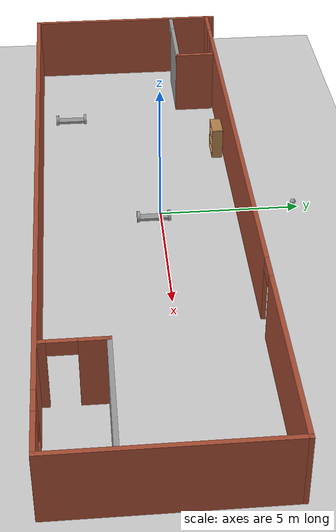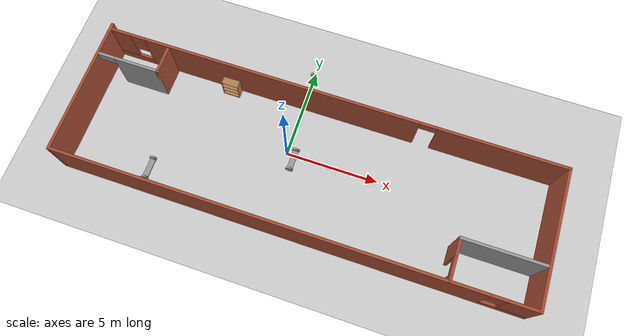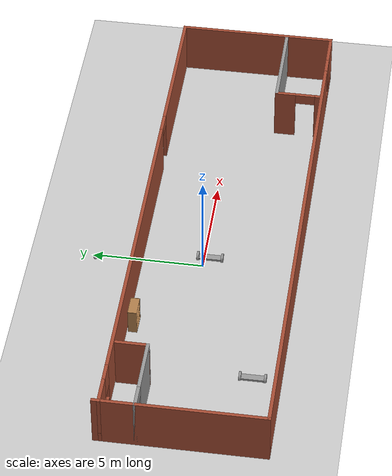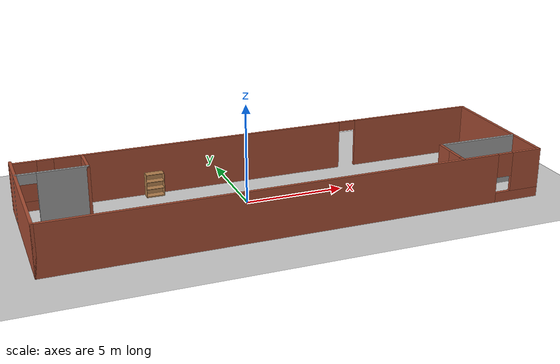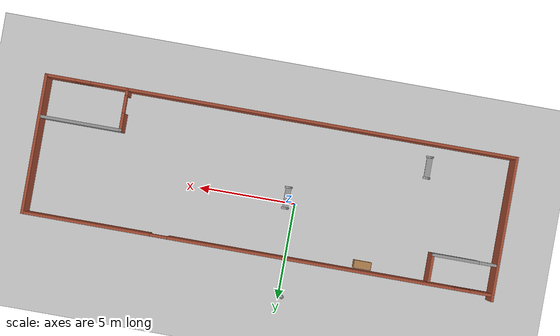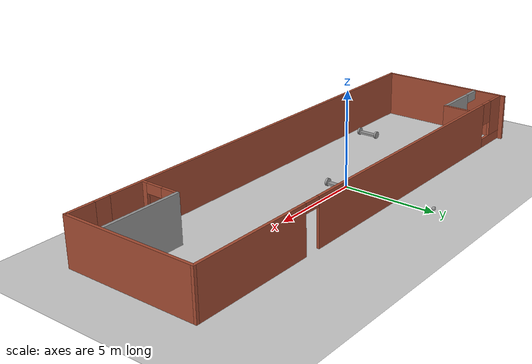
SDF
<sdf version="1.6">
 <world name="default">
  <plugin name="hello" filename="libhello.so"/>
  <light name="sun" type="directional">
   <pose>0 0 10 0 -0 0</pose>
   <diffuse>0.8 0.8 0.8 1</diffuse>
   <specular>0.2 0.2 0.2 1</specular>
   <attenuation>
    <range>1000</range>
    <constant>0.9</constant>
    <linear>0.01</linear>
    <quadratic>0.001</quadratic>
   </attenuation>
   <direction>-0.5 0.1 -0.9</direction>
  </light>
  <model name="ground_plane">
   <static>1</static>
   <link name="link">
    <collision name="collision">
     <geometry><plane><normal>0 0 1</normal><size>100 100</size></plane></geometry>
     <surface>
      <contact><collide_bitmask>65535</collide_bitmask></contact>
      <friction><ode><mu>100</mu><mu2>50</mu2></ode></friction>
     </surface>
    </collision>
    <visual name="visual">
     <cast_shadows>0</cast_shadows>
     <geometry><plane><normal>0 0 1</normal><size>100 100</size></plane></geometry>
     <material>
      <script><uri>file://media/materials/scripts/gazebo.material</uri><name>Gazebo/Grey</name></script>
     </material>
    </visual>
   </link>
  </model>
  <gravity>0 0 -9.8</gravity>
  <magnetic_field>6e-06 2.3e-05 -4.2e-05</magnetic_field>
  <atmosphere type="adiabatic"/>
  <physics name="default_physics" default="0" type="ode">
   <max_step_size>0.001</max_step_size>
   <real_time_factor>1</real_time_factor>
   <real_time_update_rate>1000</real_time_update_rate>
  </physics>
  <scene><ambient>0.4 0.4 0.4 1</ambient><background>0.7 0.7 0.7 1</background><shadows>1</shadows></scene>
  <spherical_coordinates>
   <surface_model>EARTH_WGS84</surface_model>
   <latitude_deg>0</latitude_deg>
   <longitude_deg>0</longitude_deg>
   <elevation>0</elevation>
   <heading_deg>0</heading_deg>
  </spherical_coordinates>
  <model name="robot">
   <link name="link">
    <inertial>
     <mass>1</mass>
     <inertia>
      <ixx>0.166667</ixx>
      <ixy>0</ixy>
      <ixz>0</ixz>
      <iyy>0.166667</iyy>
      <iyz>0</iyz>
      <izz>0.166667</izz>
     </inertia>
     <pose>0 0 0.2 0 -0 0</pose>
    </inertial>
    <visual name="visual">
     <geometry><box><size>0.3 1 0.1</size></box></geometry>
     <material>
      <script><name>Gazebo/Grey</name><uri>file://media/materials/scripts/gazebo.material</uri></script>
      <shader type="pixel"><normal_map>__default__</normal_map></shader>
      <ambient>0.3 0.3 0.3 1</ambient>
      <diffuse>0.7 0.7 0.7 1</diffuse>
      <specular>0.01 0.01 0.01 1</specular>
      <emissive>0 0 0 1</emissive>
     </material>
    </visual>
    <collision name="collision">
     <geometry><box><size>0.3 1 0.1</size></box></geometry>
     <surface>
      <friction>
       <ode><mu>1</mu><mu2>1</mu2><fdir1>0 0 0</fdir1><slip1>0</slip1><slip2>0</slip2></ode>
       <torsional>
        <coefficient>1</coefficient>
        <patch_radius>0</patch_radius>
        <surface_radius>0</surface_radius>
        <use_patch_radius>1</use_patch_radius>
        <ode><slip>0</slip></ode>
       </torsional>
      </friction>
      <bounce><restitution_coefficient>0</restitution_coefficient><threshold>1e+06</threshold></bounce>
      <contact>
       <collide_without_contact>0</collide_without_contact>
       <collide_without_contact_bitmask>1</collide_without_contact_bitmask>
       <collide_bitmask>1</collide_bitmask>
       <ode>
        <soft_cfm>0</soft_cfm>
        <soft_erp>0.2</soft_erp>
        <kp>1e+13</kp>
        <kd>1</kd>
        <max_vel>0.01</max_vel>
        <min_depth>0</min_depth>
       </ode>
       <bullet>
        <split_impulse>1</split_impulse>
        <split_impulse_penetration_threshold>-0.01</split_impulse_penetration_threshold>
        <soft_cfm>0</soft_cfm>
        <soft_erp>0.2</soft_erp>
        <kp>1e+13</kp>
        <kd>1</kd>
       </bullet>
      </contact>
     </surface>
    </collision>
   </link>
   <link name="link_0">
    <pose>-0 -0.550022 0.04499 1.5707 -0 0</pose>
    <inertial>
     <mass>1</mass>
     <inertia><ixx>0.145833</ixx><ixy>0</ixy><ixz>0</ixz><iyy>0.145833</iyy><iyz>0</iyz><izz>0.125</izz></inertia>
    </inertial>
    <visual name="visual">
     <geometry><cylinder><radius>0.2</radius><length>0.1</length></cylinder></geometry>
     <material>
      <lighting>1</lighting>
      <script><uri>file://media/materials/scripts/gazebo.material</uri><name>Gazebo/Grey</name></script>
      <shader type="pixel"><normal_map>__default__</normal_map></shader>
      <ambient>0.3 0.3 0.3 1</ambient>
      <diffuse>0.7 0.7 0.7 1</diffuse>
      <specular>0.01 0.01 0.01 1</specular>
      <emissive>0 0 0 1</emissive>
     </material>
    </visual>
    <collision name="collision">
     <geometry><cylinder><radius>0.2</radius><length>0.1</length></cylinder></geometry>
     <surface>
      <friction>
       <ode><mu>1</mu><mu2>1</mu2><fdir1>0 0 0</fdir1><slip1>0</slip1><slip2>0</slip2></ode>
       <torsional>
        <coefficient>1</coefficient>
        <patch_radius>0</patch_radius>
        <surface_radius>0</surface_radius>
        <use_patch_radius>1</use_patch_radius>
        <ode><slip>0</slip></ode>
       </torsional>
      </friction>
      <bounce><restitution_coefficient>0</restitution_coefficient><threshold>1e+06</threshold></bounce>
      <contact>
       <collide_without_contact>0</collide_without_contact>
       <collide_without_contact_bitmask>1</collide_without_contact_bitmask>
       <collide_bitmask>1</collide_bitmask>
       <ode>
        <soft_cfm>0</soft_cfm>
        <soft_erp>0.2</soft_erp>
        <kp>1e+13</kp>
        <kd>1</kd>
        <max_vel>0.01</max_vel>
        <min_depth>0</min_depth>
       </ode>
       <bullet>
        <split_impulse>1</split_impulse>
        <split_impulse_penetration_threshold>-0.01</split_impulse_penetration_threshold>
        <soft_cfm>0</soft_cfm>
        <soft_erp>0.2</soft_erp>
        <kp>1e+13</kp>
        <kd>1</kd>
       </bullet>
      </contact>
     </surface>
    </collision>
   </link>
   <link name="link_0_clone">
    <pose>0 0.55002 0.045005 1.57071 -0 0</pose>
    <inertial>
     <mass>1</mass>
     <inertia><ixx>0.145833</ixx><ixy>0</ixy><ixz>0</ixz><iyy>0.145833</iyy><iyz>0</iyz><izz>0.125</izz></inertia>
    </inertial>
    <visual name="visual">
     <geometry><cylinder><radius>0.2</radius><length>0.1</length></cylinder></geometry>
     <material>
      <lighting>1</lighting>
      <script><uri>file://media/materials/scripts/gazebo.material</uri><name>Gazebo/Grey</name></script>
      <shader type="pixel"><normal_map>__default__</normal_map></shader>
      <ambient>0.3 0.3 0.3 1</ambient>
      <diffuse>0.7 0.7 0.7 1</diffuse>
      <specular>0.01 0.01 0.01 1</specular>
      <emissive>0 0 0 1</emissive>
     </material>
    </visual>
    <collision name="collision">
     <geometry><cylinder><radius>0.2</radius><length>0.1</length></cylinder></geometry>
     <surface>
      <friction>
       <ode><mu>1</mu><mu2>1</mu2><fdir1>0 0 0</fdir1><slip1>0</slip1><slip2>0</slip2></ode>
       <torsional>
        <coefficient>1</coefficient>
        <patch_radius>0</patch_radius>
        <surface_radius>0</surface_radius>
        <use_patch_radius>1</use_patch_radius>
        <ode><slip>0</slip></ode>
       </torsional>
      </friction>
      <bounce><restitution_coefficient>0</restitution_coefficient><threshold>1e+06</threshold></bounce>
      <contact>
       <collide_without_contact>0</collide_without_contact>
       <collide_without_contact_bitmask>1</collide_without_contact_bitmask>
       <collide_bitmask>1</collide_bitmask>
       <ode>
        <soft_cfm>0</soft_cfm>
        <soft_erp>0.2</soft_erp>
        <kp>1e+13</kp>
        <kd>1</kd>
        <max_vel>0.01</max_vel>
        <min_depth>0</min_depth>
       </ode>
       <bullet>
        <split_impulse>1</split_impulse>
        <split_impulse_penetration_threshold>-0.01</split_impulse_penetration_threshold>
        <soft_cfm>0</soft_cfm>
        <soft_erp>0.2</soft_erp>
        <kp>1e+13</kp>
        <kd>1</kd>
       </bullet>
      </contact>
     </surface>
    </collision>
   </link>
   <joint name="link_JOINT_1" type="revolute">
    <parent>link</parent>
    <child>link_0</child>
    <axis>
     <xyz>0 0 1</xyz>
     <use_parent_model_frame>0</use_parent_model_frame>
     <limit>
      <lower>-1.79769e+308</lower>
      <upper>1.79769e+308</upper>
      <effort>-1</effort>
      <velocity>-1</velocity>
     </limit>
     <dynamics>
      <spring_reference>0</spring_reference>
      <spring_stiffness>0</spring_stiffness>
      <damping>0</damping>
     </dynamics>
    </axis>
    <physics>
     <ode><limit><cfm>0</cfm><erp>0.2</erp></limit><suspension><cfm>0</cfm><erp>0.2</erp></suspension></ode>
    </physics>
   </joint>
   <joint name="link_JOINT_2" type="revolute">
    <parent>link</parent>
    <child>link_0_clone</child>
    <axis>
     <xyz>0 0 1</xyz>
     <use_parent_model_frame>0</use_parent_model_frame>
     <limit>
      <lower>-1.79769e+308</lower>
      <upper>1.79769e+308</upper>
      <effort>-1</effort>
      <velocity>-1</velocity>
     </limit>
     <dynamics>
      <spring_reference>0</spring_reference>
      <spring_stiffness>0</spring_stiffness>
      <damping>0</damping>
     </dynamics>
    </axis>
    <physics>
     <ode><limit><cfm>0</cfm><erp>0.2</erp></limit><suspension><cfm>0</cfm><erp>0.2</erp></suspension></ode>
    </physics>
   </joint>
   <static>0</static>
   <pose>0.437911 -0.27158 0.155005 -1e-05 0 0</pose>
  </model>
  <model name="ground_f">
   <pose>1.4351 -0.614344 0 0 -0 0</pose>
   <link name="Wall_0">
    <collision name="Wall_0_Collision">
     <geometry><box><size>7.5 0.15 2.5</size></box></geometry>
     <pose>0 0 1.25 0 -0 0</pose>
    </collision>
    <visual name="Wall_0_Visual">
     <pose>0 0 1.25 0 -0 0</pose>
     <geometry><box><size>7.5 0.15 2.5</size></box></geometry>
     <material>
      <script><uri>file://media/materials/scripts/gazebo.material</uri><name>Gazebo/Bricks</name></script>
      <ambient>1 1 1 1</ambient>
     </material>
     <meta><layer>0</layer></meta>
    </visual>
    <pose>-12.175 0 0 0 0 -1.5708</pose>
   </link>
   <link name="Wall_1">
    <pose>0 -3.675 0 0 -0 0</pose>
    <visual name="Wall_1_Visual_0">
     <pose>-1.18589 0 1.25 0 -0 0</pose>
     <geometry><box><size>22.1282 0.15 2.5</size></box></geometry>
     <material>
      <script><uri>file://media/materials/scripts/gazebo.material</uri><name>Gazebo/Bricks</name></script>
      <ambient>0.333333 0.333333 1 1</ambient>
     </material>
     <meta><layer>0</layer></meta>
    </visual>
    <collision name="Wall_1_Collision_0">
     <geometry><box><size>22.1282 0.15 2.5</size></box></geometry>
     <pose>-1.18589 0 1.25 0 -0 0</pose>
    </collision>
    <visual name="Wall_1_Visual_1">
     <pose>11.0641 0 0.25 0 -0 0</pose>
     <geometry><box><size>2.37177 0.15 0.5</size></box></geometry>
     <material>
      <script><uri>file://media/materials/scripts/gazebo.material</uri><name>Gazebo/Bricks</name></script>
      <ambient>0.333333 0.333333 1 1</ambient>
     </material>
     <meta><layer>0</layer></meta>
    </visual>
    <collision name="Wall_1_Collision_1">
     <geometry><box><size>2.37177 0.15 0.5</size></box></geometry>
     <pose>11.0641 0 0.25 0 -0 0</pose>
    </collision>
    <visual name="Wall_1_Visual_2">
     <pose>11.4641 0 1.5 0 -0 0</pose>
     <geometry><box><size>1.57177 0.15 2</size></box></geometry>
     <material>
      <script><uri>file://media/materials/scripts/gazebo.material</uri><name>Gazebo/Bricks</name></script>
      <ambient>0.333333 0.333333 1 1</ambient>
     </material>
     <meta><layer>0</layer></meta>
    </visual>
    <collision name="Wall_1_Collision_2">
     <geometry><box><size>1.57177 0.15 2</size></box></geometry>
     <pose>11.4641 0 1.5 0 -0 0</pose>
    </collision>
    <visual name="Wall_1_Visual_3">
     <pose>10.2782 0 1.9 0 -0 0</pose>
     <geometry><box><size>0.8 0.15 1.2</size></box></geometry>
     <material>
      <script><uri>file://media/materials/scripts/gazebo.material</uri><name>Gazebo/Bricks</name></script>
      <ambient>0.333333 0.333333 1 1</ambient>
     </material>
     <meta><layer>0</layer></meta>
    </visual>
    <collision name="Wall_1_Collision_3">
     <geometry><box><size>0.8 0.15 1.2</size></box></geometry>
     <pose>10.2782 0 1.9 0 -0 0</pose>
    </collision>
   </link>
   <link name="Wall_2">
    <collision name="Wall_2_Collision">
     <geometry><box><size>7.25 0.15 2.5</size></box></geometry>
     <pose>0 0 1.25 0 -0 0</pose>
    </collision>
    <visual name="Wall_2_Visual">
     <pose>0 0 1.25 0 -0 0</pose>
     <geometry><box><size>7.25 0.15 2.5</size></box></geometry>
     <material>
      <script><uri>file://media/materials/scripts/gazebo.material</uri><name>Gazebo/Bricks</name></script>
      <ambient>1 1 1 1</ambient>
     </material>
     <meta><layer>0</layer></meta>
    </visual>
    <pose>12.175 -0.125 0 0 -0 1.5708</pose>
   </link>
   <link name="Wall_3">
    <pose>0 3.425 0 0 -0 3.14159</pose>
    <visual name="Wall_3_Visual_0">
     <pose>-8.91953 0 1.25 0 -0 0</pose>
     <geometry><box><size>6.66093 0.15 2.5</size></box></geometry>
     <material>
      <script><uri>file://media/materials/scripts/gazebo.material</uri><name>Gazebo/Bricks</name></script>
      <ambient>0.333333 0.333333 1 1</ambient>
     </material>
     <meta><layer>0</layer></meta>
    </visual>
    <collision name="Wall_3_Collision_0">
     <geometry><box><size>6.66093 0.15 2.5</size></box></geometry>
     <pose>-8.91953 0 1.25 0 -0 0</pose>
    </collision>
    <visual name="Wall_3_Visual_1">
     <pose>2.74762 0 1.25 0 -0 0</pose>
     <geometry><box><size>14.8734 0.15 2.5</size></box></geometry>
     <material>
      <script><uri>file://media/materials/scripts/gazebo.material</uri><name>Gazebo/Bricks</name></script>
      <ambient>0.333333 0.333333 1 1</ambient>
     </material>
     <meta><layer>0</layer></meta>
    </visual>
    <collision name="Wall_3_Collision_1">
     <geometry><box><size>14.8734 0.15 2.5</size></box></geometry>
     <pose>2.74762 0 1.25 0 -0 0</pose>
    </collision>
    <visual name="Wall_3_Visual_2">
     <pose>11.2172 0 0.25 0 -0 0</pose>
     <geometry><box><size>2.06569 0.15 0.5</size></box></geometry>
     <material>
      <script><uri>file://media/materials/scripts/gazebo.material</uri><name>Gazebo/Bricks</name></script>
      <ambient>0.333333 0.333333 1 1</ambient>
     </material>
     <meta><layer>0</layer></meta>
    </visual>
    <collision name="Wall_3_Collision_2">
     <geometry><box><size>2.06569 0.15 0.5</size></box></geometry>
     <pose>11.2172 0 0.25 0 -0 0</pose>
    </collision>
    <visual name="Wall_3_Visual_3">
     <pose>11.6172 0 1.5 0 -0 0</pose>
     <geometry><box><size>1.26569 0.15 2</size></box></geometry>
     <material>
      <script><uri>file://media/materials/scripts/gazebo.material</uri><name>Gazebo/Bricks</name></script>
      <ambient>0.333333 0.333333 1 1</ambient>
     </material>
     <meta><layer>0</layer></meta>
    </visual>
    <collision name="Wall_3_Collision_3">
     <geometry><box><size>1.26569 0.15 2</size></box></geometry>
     <pose>11.6172 0 1.5 0 -0 0</pose>
    </collision>
    <visual name="Wall_3_Visual_4">
     <pose>10.5843 0 1.9 0 -0 0</pose>
     <geometry><box><size>0.8 0.15 1.2</size></box></geometry>
     <material>
      <script><uri>file://media/materials/scripts/gazebo.material</uri><name>Gazebo/Bricks</name></script>
      <ambient>0.333333 0.333333 1 1</ambient>
     </material>
     <meta><layer>0</layer></meta>
    </visual>
    <collision name="Wall_3_Collision_4">
     <geometry><box><size>0.8 0.15 1.2</size></box></geometry>
     <pose>10.5843 0 1.9 0 -0 0</pose>
    </collision>
    <visual name="Wall_3_Visual_5">
     <pose>-5.13907 0 2.25 0 -0 0</pose>
     <geometry><box><size>0.9 0.15 0.5</size></box></geometry>
     <material>
      <script><uri>file://media/materials/scripts/gazebo.material</uri><name>Gazebo/Bricks</name></script>
      <ambient>0.333333 0.333333 1 1</ambient>
     </material>
     <meta><layer>0</layer></meta>
    </visual>
    <collision name="Wall_3_Collision_5">
     <geometry><box><size>0.9 0.15 0.5</size></box></geometry>
     <pose>-5.13907 0 2.25 0 -0 0</pose>
    </collision>
   </link>
   <link name="Wall_5">
    <pose>-10.5 1.90077 0 0 -0 0</pose>
    <visual name="Wall_5_Visual_0">
     <pose>-1.67748 0 1.25 0 -0 0</pose>
     <geometry><box><size>0.145034 0.15 2.5</size></box></geometry>
     <material>
      <script><uri>file://media/materials/scripts/gazebo.material</uri><name>Gazebo/Grey</name></script>
      <ambient>1 1 1 1</ambient>
     </material>
     <meta><layer>0</layer></meta>
    </visual>
    <collision name="Wall_5_Collision_0">
     <geometry><box><size>0.145034 0.15 2.5</size></box></geometry>
     <pose>-1.67748 0 1.25 0 -0 0</pose>
    </collision>
    <visual name="Wall_5_Visual_1">
     <pose>0.522517 0 1.25 0 -0 0</pose>
     <geometry><box><size>2.45497 0.15 2.5</size></box></geometry>
     <material>
      <script><uri>file://media/materials/scripts/gazebo.material</uri><name>Gazebo/Grey</name></script>
      <ambient>1 1 1 1</ambient>
     </material>
     <meta><layer>0</layer></meta>
    </visual>
    <collision name="Wall_5_Collision_1">
     <geometry><box><size>2.45497 0.15 2.5</size></box></geometry>
     <pose>0.522517 0 1.25 0 -0 0</pose>
    </collision>
    <visual name="Wall_5_Visual_2">
     <pose>-1.15497 0 2.25 0 -0 0</pose>
     <geometry><box><size>0.9 0.15 0.5</size></box></geometry>
     <material>
      <script><uri>file://media/materials/scripts/gazebo.material</uri><name>Gazebo/Grey</name></script>
      <ambient>1 1 1 1</ambient>
     </material>
     <meta><layer>0</layer></meta>
    </visual>
    <collision name="Wall_5_Collision_2">
     <geometry><box><size>0.9 0.15 0.5</size></box></geometry>
     <pose>-1.15497 0 2.25 0 -0 0</pose>
    </collision>
   </link>
   <link name="Wall_6">
    <collision name="Wall_6_Collision">
     <geometry><box><size>1.5 0.15 2.5</size></box></geometry>
     <pose>0 0 1.25 0 -0 0</pose>
    </collision>
    <visual name="Wall_6_Visual">
     <pose>0 0 1.25 0 -0 0</pose>
     <geometry><box><size>1.5 0.15 2.5</size></box></geometry>
     <material>
      <script><uri>file://media/materials/scripts/gazebo.material</uri><name>Gazebo/Bricks</name></script>
      <ambient>1 1 1 1</ambient>
     </material>
     <meta><layer>0</layer></meta>
    </visual>
    <pose>-8.825 2.57577 0 0 -0 1.5708</pose>
   </link>
   <link name="Wall_8">
    <collision name="Wall_8_Collision">
     <geometry><box><size>4.25 0.15 2.5</size></box></geometry>
     <pose>0 0 1.25 0 -0 0</pose>
    </collision>
    <visual name="Wall_8_Visual">
     <pose>0 0 1.25 0 -0 0</pose>
     <geometry><box><size>4.25 0.15 2.5</size></box></geometry>
     <material>
      <script><uri>file://media/materials/scripts/gazebo.material</uri><name>Gazebo/Grey</name></script>
      <ambient>1 1 1 1</ambient>
     </material>
     <meta><layer>0</layer></meta>
    </visual>
    <pose>10.0331 -1.55593 0 0 -0 3.14159</pose>
   </link>
   <link name="Wall_9">
    <pose>7.98305 -2.60593 0 0 0 -1.5708</pose>
    <visual name="Wall_9_Visual_0">
     <pose>-0.639515 0 1.25 0 -0 0</pose>
     <geometry><box><size>0.97097 0.15 2.5</size></box></geometry>
     <material>
      <script><uri>file://media/materials/scripts/gazebo.material</uri><name>Gazebo/Bricks</name></script>
      <ambient>1 1 1 1</ambient>
     </material>
     <meta><layer>0</layer></meta>
    </visual>
    <collision name="Wall_9_Collision_0">
     <geometry><box><size>0.97097 0.15 2.5</size></box></geometry>
     <pose>-0.639515 0 1.25 0 -0 0</pose>
    </collision>
    <visual name="Wall_9_Visual_1">
     <pose>0.935485 0 1.25 0 -0 0</pose>
     <geometry><box><size>0.37903 0.15 2.5</size></box></geometry>
     <material>
      <script><uri>file://media/materials/scripts/gazebo.material</uri><name>Gazebo/Bricks</name></script>
      <ambient>1 1 1 1</ambient>
     </material>
     <meta><layer>0</layer></meta>
    </visual>
    <collision name="Wall_9_Collision_1">
     <geometry><box><size>0.37903 0.15 2.5</size></box></geometry>
     <pose>0.935485 0 1.25 0 -0 0</pose>
    </collision>
    <visual name="Wall_9_Visual_2">
     <pose>0.29597 0 2.25 0 -0 0</pose>
     <geometry><box><size>0.9 0.15 0.5</size></box></geometry>
     <material>
      <script><uri>file://media/materials/scripts/gazebo.material</uri><name>Gazebo/Bricks</name></script>
      <ambient>1 1 1 1</ambient>
     </material>
     <meta><layer>0</layer></meta>
    </visual>
    <collision name="Wall_9_Collision_2">
     <geometry><box><size>0.9 0.15 0.5</size></box></geometry>
     <pose>0.29597 0 2.25 0 -0 0</pose>
    </collision>
   </link>
   <static>1</static>
  </model>
  <model name="robot_clone">
   <link name="link">
    <inertial>
     <mass>1</mass>
     <inertia>
      <ixx>0.166667</ixx>
      <ixy>0</ixy>
      <ixz>0</ixz>
      <iyy>0.166667</iyy>
      <iyz>0</iyz>
      <izz>0.166667</izz>
     </inertia>
     <pose>0 0 0.2 0 -0 0</pose>
    </inertial>
    <visual name="visual">
     <geometry><box><size>0.3 1 0.1</size></box></geometry>
     <material>
      <script><name>Gazebo/Grey</name><uri>file://media/materials/scripts/gazebo.material</uri></script>
      <shader type="pixel"><normal_map>__default__</normal_map></shader>
      <ambient>0.3 0.3 0.3 1</ambient>
      <diffuse>0.7 0.7 0.7 1</diffuse>
      <specular>0.01 0.01 0.01 1</specular>
      <emissive>0 0 0 1</emissive>
     </material>
    </visual>
    <collision name="collision">
     <geometry><box><size>0.3 1 0.1</size></box></geometry>
     <surface>
      <friction>
       <ode><mu>1</mu><mu2>1</mu2><fdir1>0 0 0</fdir1><slip1>0</slip1><slip2>0</slip2></ode>
       <torsional>
        <coefficient>1</coefficient>
        <patch_radius>0</patch_radius>
        <surface_radius>0</surface_radius>
        <use_patch_radius>1</use_patch_radius>
        <ode><slip>0</slip></ode>
       </torsional>
      </friction>
      <bounce><restitution_coefficient>0</restitution_coefficient><threshold>1e+06</threshold></bounce>
      <contact>
       <collide_without_contact>0</collide_without_contact>
       <collide_without_contact_bitmask>1</collide_without_contact_bitmask>
       <collide_bitmask>1</collide_bitmask>
       <ode>
        <soft_cfm>0</soft_cfm>
        <soft_erp>0.2</soft_erp>
        <kp>1e+13</kp>
        <kd>1</kd>
        <max_vel>0.01</max_vel>
        <min_depth>0</min_depth>
       </ode>
       <bullet>
        <split_impulse>1</split_impulse>
        <split_impulse_penetration_threshold>-0.01</split_impulse_penetration_threshold>
        <soft_cfm>0</soft_cfm>
        <soft_erp>0.2</soft_erp>
        <kp>1e+13</kp>
        <kd>1</kd>
       </bullet>
      </contact>
     </surface>
    </collision>
   </link>
   <link name="link_0">
    <pose>-0 -0.550022 0.04499 1.5707 -0 0</pose>
    <inertial>
     <mass>1</mass>
     <inertia><ixx>0.145833</ixx><ixy>0</ixy><ixz>0</ixz><iyy>0.145833</iyy><iyz>0</iyz><izz>0.125</izz></inertia>
    </inertial>
    <visual name="visual">
     <geometry><cylinder><radius>0.2</radius><length>0.1</length></cylinder></geometry>
     <material>
      <lighting>1</lighting>
      <script><uri>file://media/materials/scripts/gazebo.material</uri><name>Gazebo/Grey</name></script>
      <shader type="pixel"><normal_map>__default__</normal_map></shader>
      <ambient>0.3 0.3 0.3 1</ambient>
      <diffuse>0.7 0.7 0.7 1</diffuse>
      <specular>0.01 0.01 0.01 1</specular>
      <emissive>0 0 0 1</emissive>
     </material>
    </visual>
    <collision name="collision">
     <geometry><cylinder><radius>0.2</radius><length>0.1</length></cylinder></geometry>
     <surface>
      <friction>
       <ode><mu>1</mu><mu2>1</mu2><fdir1>0 0 0</fdir1><slip1>0</slip1><slip2>0</slip2></ode>
       <torsional>
        <coefficient>1</coefficient>
        <patch_radius>0</patch_radius>
        <surface_radius>0</surface_radius>
        <use_patch_radius>1</use_patch_radius>
        <ode><slip>0</slip></ode>
       </torsional>
      </friction>
      <bounce><restitution_coefficient>0</restitution_coefficient><threshold>1e+06</threshold></bounce>
      <contact>
       <collide_without_contact>0</collide_without_contact>
       <collide_without_contact_bitmask>1</collide_without_contact_bitmask>
       <collide_bitmask>1</collide_bitmask>
       <ode>
        <soft_cfm>0</soft_cfm>
        <soft_erp>0.2</soft_erp>
        <kp>1e+13</kp>
        <kd>1</kd>
        <max_vel>0.01</max_vel>
        <min_depth>0</min_depth>
       </ode>
       <bullet>
        <split_impulse>1</split_impulse>
        <split_impulse_penetration_threshold>-0.01</split_impulse_penetration_threshold>
        <soft_cfm>0</soft_cfm>
        <soft_erp>0.2</soft_erp>
        <kp>1e+13</kp>
        <kd>1</kd>
       </bullet>
      </contact>
     </surface>
    </collision>
   </link>
   <link name="link_0_clone">
    <pose>0 0.55002 0.045005 1.57071 -0 0</pose>
    <inertial>
     <mass>1</mass>
     <inertia><ixx>0.145833</ixx><ixy>0</ixy><ixz>0</ixz><iyy>0.145833</iyy><iyz>0</iyz><izz>0.125</izz></inertia>
    </inertial>
    <visual name="visual">
     <geometry><cylinder><radius>0.2</radius><length>0.1</length></cylinder></geometry>
     <material>
      <lighting>1</lighting>
      <script><uri>file://media/materials/scripts/gazebo.material</uri><name>Gazebo/Grey</name></script>
      <shader type="pixel"><normal_map>__default__</normal_map></shader>
      <ambient>0.3 0.3 0.3 1</ambient>
      <diffuse>0.7 0.7 0.7 1</diffuse>
      <specular>0.01 0.01 0.01 1</specular>
      <emissive>0 0 0 1</emissive>
     </material>
    </visual>
    <collision name="collision">
     <geometry><cylinder><radius>0.2</radius><length>0.1</length></cylinder></geometry>
     <surface>
      <friction>
       <ode><mu>1</mu><mu2>1</mu2><fdir1>0 0 0</fdir1><slip1>0</slip1><slip2>0</slip2></ode>
       <torsional>
        <coefficient>1</coefficient>
        <patch_radius>0</patch_radius>
        <surface_radius>0</surface_radius>
        <use_patch_radius>1</use_patch_radius>
        <ode><slip>0</slip></ode>
       </torsional>
      </friction>
      <bounce><restitution_coefficient>0</restitution_coefficient><threshold>1e+06</threshold></bounce>
      <contact>
       <collide_without_contact>0</collide_without_contact>
       <collide_without_contact_bitmask>1</collide_without_contact_bitmask>
       <collide_bitmask>1</collide_bitmask>
       <ode>
        <soft_cfm>0</soft_cfm>
        <soft_erp>0.2</soft_erp>
        <kp>1e+13</kp>
        <kd>1</kd>
        <max_vel>0.01</max_vel>
        <min_depth>0</min_depth>
       </ode>
       <bullet>
        <split_impulse>1</split_impulse>
        <split_impulse_penetration_threshold>-0.01</split_impulse_penetration_threshold>
        <soft_cfm>0</soft_cfm>
        <soft_erp>0.2</soft_erp>
        <kp>1e+13</kp>
        <kd>1</kd>
       </bullet>
      </contact>
     </surface>
    </collision>
   </link>
   <joint name="link_JOINT_1" type="revolute">
    <parent>link</parent>
    <child>link_0</child>
    <axis>
     <xyz>0 0 1</xyz>
     <use_parent_model_frame>0</use_parent_model_frame>
     <limit>
      <lower>-1.79769e+308</lower>
      <upper>1.79769e+308</upper>
      <effort>-1</effort>
      <velocity>-1</velocity>
     </limit>
     <dynamics>
      <spring_reference>0</spring_reference>
      <spring_stiffness>0</spring_stiffness>
      <damping>0</damping>
     </dynamics>
    </axis>
    <physics>
     <ode><limit><cfm>0</cfm><erp>0.2</erp></limit><suspension><cfm>0</cfm><erp>0.2</erp></suspension></ode>
    </physics>
   </joint>
   <joint name="link_JOINT_2" type="revolute">
    <parent>link</parent>
    <child>link_0_clone</child>
    <axis>
     <xyz>0 0 1</xyz>
     <use_parent_model_frame>0</use_parent_model_frame>
     <limit>
      <lower>-1.79769e+308</lower>
      <upper>1.79769e+308</upper>
      <effort>-1</effort>
      <velocity>-1</velocity>
     </limit>
     <dynamics>
      <spring_reference>0</spring_reference>
      <spring_stiffness>0</spring_stiffness>
      <damping>0</damping>
     </dynamics>
    </axis>
    <physics>
     <ode><limit><cfm>0</cfm><erp>0.2</erp></limit><suspension><cfm>0</cfm><erp>0.2</erp></suspension></ode>
    </physics>
   </joint>
   <static>0</static>
   <pose>-6.5301 -3.09943 0.155008 -1.4e-05 0 0</pose>
  </model>
  <model name="bookshelf">
   <static>1</static>
   <link name="link">
    <inertial><mass>1</mass></inertial>
    <collision name="back">
     <pose>0 0.005 0.6 0 -0 0</pose>
     <geometry><box><size>0.9 0.01 1.2</size></box></geometry>
    </collision>
    <visual name="visual1">
     <pose>0 0.005 0.6 0 -0 0</pose>
     <geometry><box><size>0.9 0.01 1.2</size></box></geometry>
     <material>
      <script><uri>file://media/materials/scripts/gazebo.material</uri><name>Gazebo/Wood</name></script>
     </material>
    </visual>
    <collision name="left_side">
     <pose>0.45 -0.195 0.6 0 -0 0</pose>
     <geometry><box><size>0.02 0.4 1.2</size></box></geometry>
    </collision>
    <visual name="visual2">
     <pose>0.45 -0.195 0.6 0 -0 0</pose>
     <geometry><box><size>0.02 0.4 1.2</size></box></geometry>
     <material>
      <script><uri>file://media/materials/scripts/gazebo.material</uri><name>Gazebo/Wood</name></script>
     </material>
    </visual>
    <collision name="right_side">
     <pose>-0.45 -0.195 0.6 0 -0 0</pose>
     <geometry><box><size>0.02 0.4 1.2</size></box></geometry>
    </collision>
    <visual name="visual3">
     <pose>-0.45 -0.195 0.6 0 -0 0</pose>
     <geometry><box><size>0.02 0.4 1.2</size></box></geometry>
     <material>
      <script><uri>file://media/materials/scripts/gazebo.material</uri><name>Gazebo/Wood</name></script>
     </material>
    </visual>
    <collision name="bottom">
     <pose>0 -0.195 0.03 0 -0 0</pose>
     <geometry><box><size>0.88 0.4 0.06</size></box></geometry>
    </collision>
    <visual name="visual4">
     <pose>0 -0.195 0.03 0 -0 0</pose>
     <geometry><box><size>0.88 0.4 0.06</size></box></geometry>
     <material>
      <script><uri>file://media/materials/scripts/gazebo.material</uri><name>Gazebo/Wood</name></script>
     </material>
    </visual>
    <collision name="top">
     <pose>0 -0.195 1.19 0 -0 0</pose>
     <geometry><box><size>0.88 0.4 0.02</size></box></geometry>
    </collision>
    <visual name="visual5">
     <pose>0 -0.195 1.19 0 -0 0</pose>
     <geometry><box><size>0.88 0.4 0.02</size></box></geometry>
     <material>
      <script><uri>file://media/materials/scripts/gazebo.material</uri><name>Gazebo/Wood</name></script>
     </material>
    </visual>
    <collision name="low_shelf">
     <pose>0 -0.195 0.43 0 -0 0</pose>
     <geometry><box><size>0.88 0.4 0.02</size></box></geometry>
    </collision>
    <visual name="visual6">
     <pose>0 -0.195 0.43 0 -0 0</pose>
     <geometry><box><size>0.88 0.4 0.02</size></box></geometry>
     <material>
      <script><uri>file://media/materials/scripts/gazebo.material</uri><name>Gazebo/Wood</name></script>
     </material>
    </visual>
    <collision name="high_shelf">
     <pose>0 -0.195 0.8 0 -0 0</pose>
     <geometry><box><size>0.88 0.4 0.02</size></box></geometry>
    </collision>
    <visual name="visual7">
     <pose>0 -0.195 0.8 0 -0 0</pose>
     <geometry><box><size>0.88 0.4 0.02</size></box></geometry>
     <material>
      <script><uri>file://media/materials/scripts/gazebo.material</uri><name>Gazebo/Wood</name></script>
     </material>
    </visual>
   </link>
   <pose>-3.98806 2.66917 0 0 -0 0</pose>
  </model>
  <model name="my_ball">
   <link name="link_0">
    <inertial>
     <mass>1</mass>
     <inertia><ixx>0.1</ixx><ixy>0</ixy><ixz>0</ixz><iyy>0.1</iyy><iyz>0</iyz><izz>0.1</izz></inertia>
    </inertial>
    <visual name="visual">
     <geometry><sphere><radius>0.1</radius></sphere></geometry>
     <material>
      <lighting>1</lighting>
      <script><uri>file://media/materials/scripts/gazebo.material</uri><name>Gazebo/Grey</name></script>
      <shader type="pixel"><normal_map>__default__</normal_map></shader>
      <ambient>1 1 1 1</ambient>
      <diffuse>1 1 1 1</diffuse>
      <specular>1 1 1 1</specular>
      <emissive>1 1 1 1</emissive>
     </material>
    </visual>
    <collision name="collision">
     <geometry><sphere><radius>0.1</radius></sphere></geometry>
     <surface>
      <friction>
       <ode><mu>1</mu><mu2>1</mu2><fdir1>0 0 0</fdir1><slip1>0</slip1><slip2>0</slip2></ode>
       <torsional>
        <coefficient>1</coefficient>
        <patch_radius>0</patch_radius>
        <surface_radius>0</surface_radius>
        <use_patch_radius>1</use_patch_radius>
        <ode><slip>0</slip></ode>
       </torsional>
      </friction>
      <bounce><restitution_coefficient>0</restitution_coefficient><threshold>1e+06</threshold></bounce>
      <contact>
       <collide_without_contact>0</collide_without_contact>
       <collide_without_contact_bitmask>1</collide_without_contact_bitmask>
       <collide_bitmask>1</collide_bitmask>
       <ode>
        <soft_cfm>0</soft_cfm>
        <soft_erp>0.2</soft_erp>
        <kp>1e+13</kp>
        <kd>1</kd>
        <max_vel>0.01</max_vel>
        <min_depth>0</min_depth>
       </ode>
       <bullet>
        <split_impulse>1</split_impulse>
        <split_impulse_penetration_threshold>-0.01</split_impulse_penetration_threshold>
        <soft_cfm>0</soft_cfm>
        <soft_erp>0.2</soft_erp>
        <kp>1e+13</kp>
        <kd>1</kd>
       </bullet>
      </contact>
     </surface>
    </collision>
   </link>
   <static>0</static>
   <pose>-0.192755 4.86615 0.1 0 -0 0</pose>
  </model>
 </world>
</sdf>
